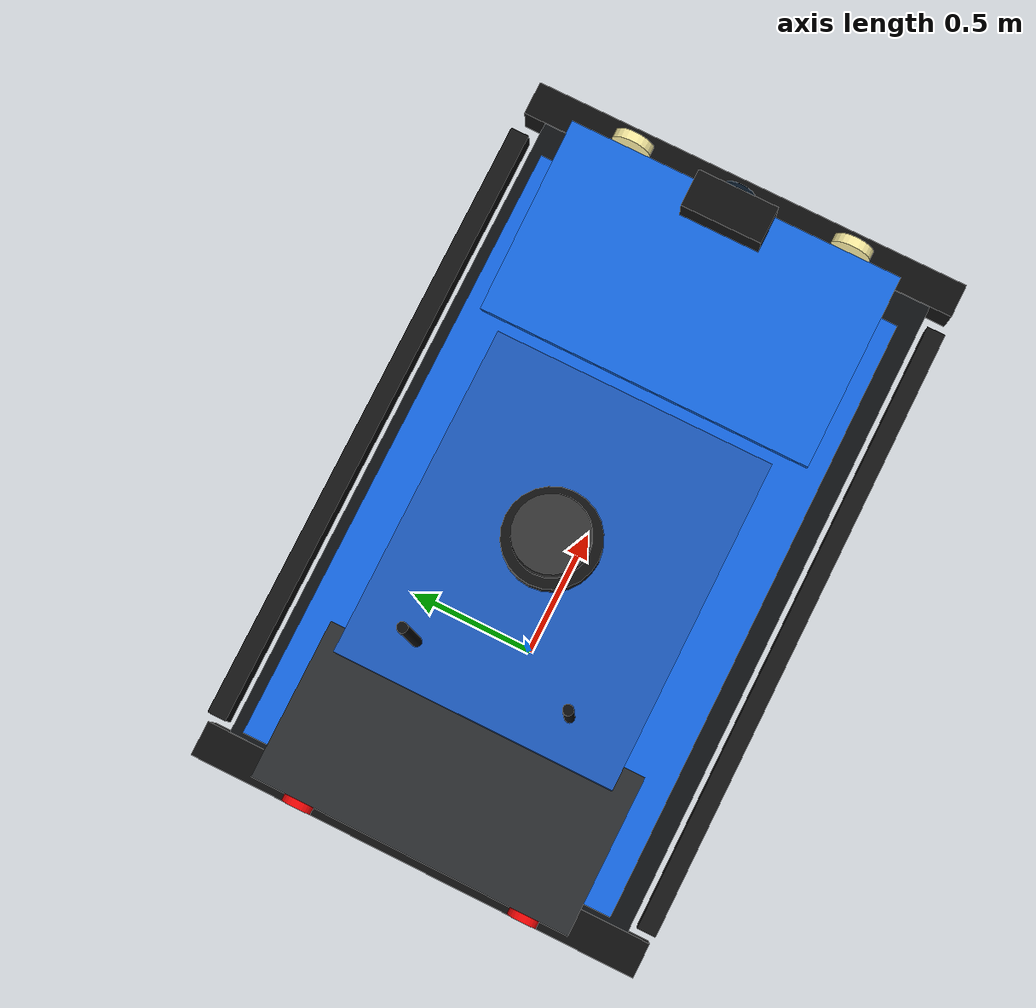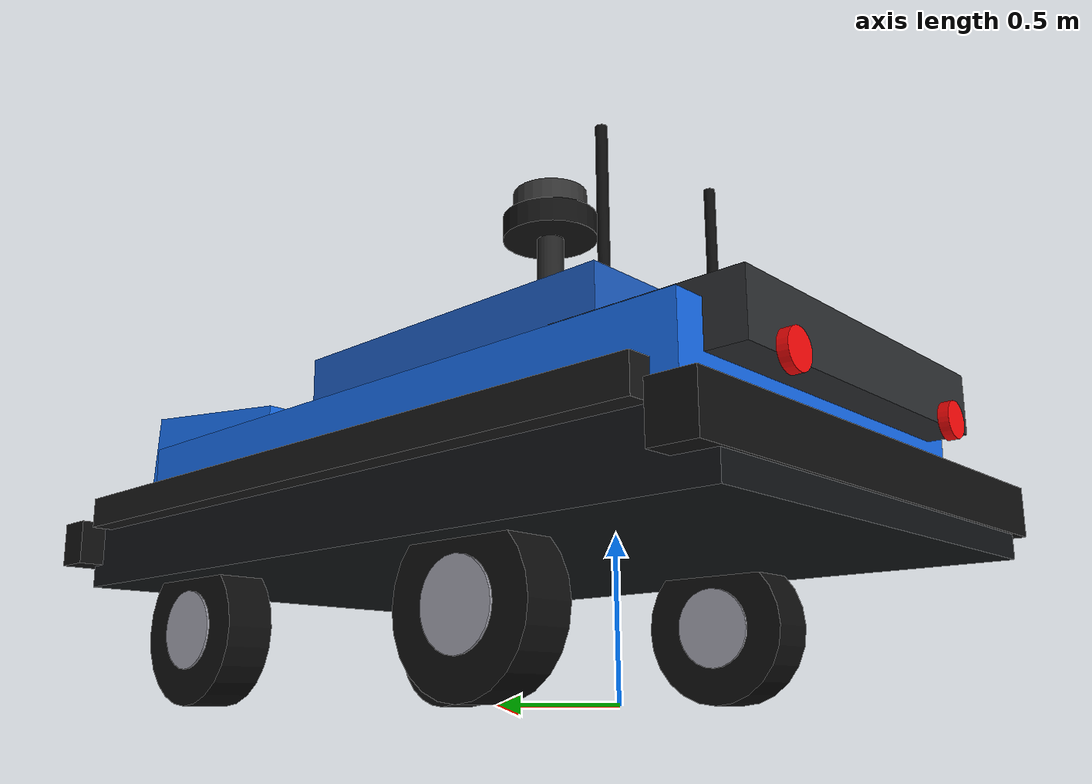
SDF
<?xml version="1.0"?>
<sdf version="1.10">

  <model name="ugv_6">

    <!-- REFERENCE CONVENTION                                  -->
    <!-- Model x=y=0 is the REAR AXLE CENTER, matching the     -->
    <!-- SHA*/LCBR State(x,y,yaw) reference. Front axle x=1.3. -->
    <!-- Planner footprint spans x=[-1,+2], y=[-1,+1].         -->

    <!-- CHASSIS -->
    <link name="base_link">
      <pose>0 0 0.35 0 0 0</pose>

      <inertial>
        <mass>20.0</mass>
        <inertia>
          <ixx>1.8</ixx>
          <iyy>3.0</iyy>
          <izz>3.5</izz>
        </inertia>
      </inertial>

      <collision name="collision">
        <!-- Planner footprint: rear axle reference, LB=1 m, LF=2 m. -->
        <pose>0.5 0 0 0 0 0</pose>
        <geometry>
          <box>
            <size>3.0 2.0 0.35</size>
          </box>
        </geometry>
      </collision>

      <!-- REALISTIC VISUAL BODY ONLY                         -->
      <!-- Physics, collision and Ackermann model unchanged. -->

      <!-- Structural lower chassis -->
      <visual name="lower_chassis">
        <pose>0.45 0 0.18 0 0 0</pose>
        <geometry>
          <box>
            <size>2.65 1.55 0.22</size>
          </box>
        </geometry>
        <material>
          <ambient>0.035 0.045 0.055 1</ambient>
          <diffuse>0.055 0.065 0.075 1</diffuse>
        </material>
      </visual>

      <!-- Main body -->
      <visual name="main_body">
        <pose>0.40 0 0.39 0 0 0</pose>
        <geometry>
          <box>
            <size>2.25 1.38 0.32</size>
          </box>
        </geometry>
        <material>
          <ambient>0.05 0.28 0.62 1</ambient>
          <diffuse>0.08 0.40 0.88 1</diffuse>
        </material>
      </visual>

      <!-- Raised central electronics enclosure -->
      <visual name="electronics_enclosure">
        <pose>0.25 0 0.65 0 0 0</pose>
        <geometry>
          <box>
            <size>1.20 1.02 0.25</size>
          </box>
        </geometry>
        <material>
          <ambient>0.07 0.24 0.50 1</ambient>
          <diffuse>0.10 0.34 0.72 1</diffuse>
        </material>
      </visual>

      <!-- Sloped-looking front hood -->
      <visual name="front_hood">
        <pose>1.30 0 0.52 0 -0.12 0</pose>
        <geometry>
          <box>
            <size>0.72 1.25 0.27</size>
          </box>
        </geometry>
        <material>
          <ambient>0.06 0.30 0.65 1</ambient>
          <diffuse>0.09 0.43 0.92 1</diffuse>
        </material>
      </visual>

      <!-- Rear equipment platform -->
      <visual name="rear_platform">
        <pose>-0.55 0 0.51 0 0 0</pose>
        <geometry>
          <box>
            <size>0.58 1.18 0.18</size>
          </box>
        </geometry>
        <material>
          <ambient>0.10 0.11 0.12 1</ambient>
          <diffuse>0.16 0.17 0.18 1</diffuse>
        </material>
      </visual>

      <!-- Front bumper -->
      <visual name="front_bumper">
        <pose>1.78 0 0.22 0 0 0</pose>
        <geometry>
          <box>
            <size>0.13 1.72 0.15</size>
          </box>
        </geometry>
        <material>
          <ambient>0.025 0.025 0.025 1</ambient>
          <diffuse>0.055 0.055 0.055 1</diffuse>
        </material>
      </visual>

      <!-- Rear bumper -->
      <visual name="rear_bumper">
        <pose>-0.82 0 0.22 0 0 0</pose>
        <geometry>
          <box>
            <size>0.13 1.72 0.15</size>
          </box>
        </geometry>
        <material>
          <ambient>0.025 0.025 0.025 1</ambient>
          <diffuse>0.055 0.055 0.055 1</diffuse>
        </material>
      </visual>

      <!-- Left protective side rail -->
      <visual name="left_side_rail">
        <pose>0.45 0.83 0.31 0 0 0</pose>
        <geometry>
          <box>
            <size>2.35 0.07 0.10</size>
          </box>
        </geometry>
        <material>
          <ambient>0.04 0.04 0.04 1</ambient>
          <diffuse>0.08 0.08 0.08 1</diffuse>
        </material>
      </visual>

      <!-- Right protective side rail -->
      <visual name="right_side_rail">
        <pose>0.45 -0.83 0.31 0 0 0</pose>
        <geometry>
          <box>
            <size>2.35 0.07 0.10</size>
          </box>
        </geometry>
        <material>
          <ambient>0.04 0.04 0.04 1</ambient>
          <diffuse>0.08 0.08 0.08 1</diffuse>
        </material>
      </visual>

      <!-- Sensor mast -->
      <visual name="sensor_mast">
        <pose>0.25 0 0.97 0 0 0</pose>
        <geometry>
          <cylinder>
            <radius>0.045</radius>
            <length>0.52</length>
          </cylinder>
        </geometry>
        <material>
          <ambient>0.08 0.08 0.08 1</ambient>
          <diffuse>0.14 0.14 0.14 1</diffuse>
        </material>
      </visual>

      <!-- LiDAR lower housing -->
      <visual name="lidar_base">
        <pose>0.25 0 1.22 0 0 0</pose>
        <geometry>
          <cylinder>
            <radius>0.16</radius>
            <length>0.08</length>
          </cylinder>
        </geometry>
        <material>
          <ambient>0.03 0.03 0.03 1</ambient>
          <diffuse>0.07 0.07 0.07 1</diffuse>
        </material>
      </visual>

      <!-- LiDAR scanning head -->
      <visual name="lidar_head">
        <pose>0.25 0 1.30 0 0 0</pose>
        <geometry>
          <cylinder>
            <radius>0.125</radius>
            <length>0.09</length>
          </cylinder>
        </geometry>
        <material>
          <ambient>0.12 0.12 0.12 1</ambient>
          <diffuse>0.20 0.20 0.20 1</diffuse>
        </material>
      </visual>

      <!-- Front camera housing -->
      <visual name="camera_body">
        <pose>1.58 0 0.70 0 0 0</pose>
        <geometry>
          <box>
            <size>0.14 0.30 0.18</size>
          </box>
        </geometry>
        <material>
          <ambient>0.025 0.025 0.025 1</ambient>
          <diffuse>0.06 0.06 0.06 1</diffuse>
        </material>
      </visual>

      <!-- Camera lens -->
      <visual name="camera_lens">
        <pose>1.66 0 0.70 0 1.5708 0</pose>
        <geometry>
          <cylinder>
            <radius>0.055</radius>
            <length>0.035</length>
          </cylinder>
        </geometry>
        <material>
          <ambient>0.01 0.03 0.05 1</ambient>
          <diffuse>0.02 0.08 0.14 1</diffuse>
        </material>
      </visual>

      <!-- Left headlight -->
      <visual name="left_headlight">
        <pose>1.73 0.43 0.48 0 1.5708 0</pose>
        <geometry>
          <cylinder>
            <radius>0.075</radius>
            <length>0.035</length>
          </cylinder>
        </geometry>
        <material>
          <ambient>1.0 0.90 0.55 1</ambient>
          <diffuse>1.0 0.95 0.65 1</diffuse>
          <emissive>0.65 0.55 0.20 1</emissive>
        </material>
      </visual>

      <!-- Right headlight -->
      <visual name="right_headlight">
        <pose>1.73 -0.43 0.48 0 1.5708 0</pose>
        <geometry>
          <cylinder>
            <radius>0.075</radius>
            <length>0.035</length>
          </cylinder>
        </geometry>
        <material>
          <ambient>1.0 0.90 0.55 1</ambient>
          <diffuse>1.0 0.95 0.65 1</diffuse>
          <emissive>0.65 0.55 0.20 1</emissive>
        </material>
      </visual>

      <!-- Left rear light -->
      <visual name="left_rear_light">
        <pose>-0.86 0.43 0.43 0 1.5708 0</pose>
        <geometry>
          <cylinder>
            <radius>0.055</radius>
            <length>0.03</length>
          </cylinder>
        </geometry>
        <material>
          <ambient>0.70 0.02 0.02 1</ambient>
          <diffuse>0.95 0.03 0.03 1</diffuse>
          <emissive>0.35 0.00 0.00 1</emissive>
        </material>
      </visual>

      <!-- Right rear light -->
      <visual name="right_rear_light">
        <pose>-0.86 -0.43 0.43 0 1.5708 0</pose>
        <geometry>
          <cylinder>
            <radius>0.055</radius>
            <length>0.03</length>
          </cylinder>
        </geometry>
        <material>
          <ambient>0.70 0.02 0.02 1</ambient>
          <diffuse>0.95 0.03 0.03 1</diffuse>
          <emissive>0.35 0.00 0.00 1</emissive>
        </material>
      </visual>

      <!-- Left antenna -->
      <visual name="left_antenna">
        <pose>-0.20 0.28 1.03 0 0 0</pose>
        <geometry>
          <cylinder>
            <radius>0.018</radius>
            <length>0.55</length>
          </cylinder>
        </geometry>
        <material>
          <ambient>0.03 0.03 0.03 1</ambient>
          <diffuse>0.05 0.05 0.05 1</diffuse>
        </material>
      </visual>

      <!-- Right antenna -->
      <visual name="right_antenna">
        <pose>-0.20 -0.28 1.03 0 0 0</pose>
        <geometry>
          <cylinder>
            <radius>0.018</radius>
            <length>0.55</length>
          </cylinder>
        </geometry>
        <material>
          <ambient>0.03 0.03 0.03 1</ambient>
          <diffuse>0.05 0.05 0.05 1</diffuse>
        </material>
      </visual>
    </link>

    <!-- FRONT STEERING LINKS -->

    <link name="front_left_steering_link">
      <pose>1.30 0.58 0.25 0 0 0</pose>
      <inertial>
        <mass>0.1</mass>
        <inertia>
          <ixx>0.001</ixx>
          <iyy>0.001</iyy>
          <izz>0.001</izz>
        </inertia>
      </inertial>
    </link>

    <link name="front_right_steering_link">
      <pose>1.30 -0.58 0.25 0 0 0</pose>
      <inertial>
        <mass>0.1</mass>
        <inertia>
          <ixx>0.001</ixx>
          <iyy>0.001</iyy>
          <izz>0.001</izz>
        </inertia>
      </inertial>
    </link>

    <!-- FRONT LEFT WHEEL -->
    <!-- Link frame stays aligned with vehicle. -->
    <!-- Cylinder geometry is rotated so axle is along Y. -->

    <link name="front_left_wheel">
      <pose>1.30 0.58 0.25 0 0 0</pose>

      <inertial>
        <mass>1.0</mass>
        <inertia>
          <ixx>0.03</ixx>
          <iyy>0.02</iyy>
          <izz>0.03</izz>
        </inertia>
      </inertial>

      <collision name="collision">
        <pose>0 0 0 1.5708 0 0</pose>

        <surface>
          <friction>
            <ode>
              <mu>1.0</mu>
              <mu2>1.0</mu2>
            </ode>
          </friction>
        </surface>

        <geometry>
          <cylinder>
            <radius>0.25</radius>
            <length>0.16</length>
          </cylinder>
        </geometry>
      </collision>

      <visual name="visual">
        <pose>0 0 0 1.5708 0 0</pose>

        <geometry>
          <cylinder>
            <radius>0.25</radius>
            <length>0.16</length>
          </cylinder>
        </geometry>

        <material>
          <ambient>0.05 0.05 0.05 1</ambient>
          <diffuse>0.05 0.05 0.05 1</diffuse>
        </material>
      </visual>

      <visual name="rim_visual">
        <pose>0 0 0 1.5708 0 0</pose>
        <geometry>
          <cylinder>
            <radius>0.13</radius>
            <length>0.175</length>
          </cylinder>
        </geometry>
        <material>
          <ambient>0.35 0.35 0.37 1</ambient>
          <diffuse>0.60 0.60 0.64 1</diffuse>
        </material>
      </visual>

</link>

    <!-- FRONT RIGHT WHEEL -->

    <link name="front_right_wheel">
      <pose>1.30 -0.58 0.25 0 0 0</pose>

      <inertial>
        <mass>1.0</mass>
        <inertia>
          <ixx>0.03</ixx>
          <iyy>0.02</iyy>
          <izz>0.03</izz>
        </inertia>
      </inertial>

      <collision name="collision">
        <pose>0 0 0 1.5708 0 0</pose>

        <surface>
          <friction>
            <ode>
              <mu>1.0</mu>
              <mu2>1.0</mu2>
            </ode>
          </friction>
        </surface>

        <geometry>
          <cylinder>
            <radius>0.25</radius>
            <length>0.16</length>
          </cylinder>
        </geometry>
      </collision>

      <visual name="visual">
        <pose>0 0 0 1.5708 0 0</pose>

        <geometry>
          <cylinder>
            <radius>0.25</radius>
            <length>0.16</length>
          </cylinder>
        </geometry>

        <material>
          <ambient>0.05 0.05 0.05 1</ambient>
          <diffuse>0.05 0.05 0.05 1</diffuse>
        </material>
      </visual>

      <visual name="rim_visual">
        <pose>0 0 0 1.5708 0 0</pose>
        <geometry>
          <cylinder>
            <radius>0.13</radius>
            <length>0.175</length>
          </cylinder>
        </geometry>
        <material>
          <ambient>0.35 0.35 0.37 1</ambient>
          <diffuse>0.60 0.60 0.64 1</diffuse>
        </material>
      </visual>

</link>

    <!-- REAR LEFT WHEEL -->

    <link name="rear_left_wheel">
      <pose>0.0 0.58 0.25 0 0 0</pose>

      <inertial>
        <mass>1.0</mass>
        <inertia>
          <ixx>0.03</ixx>
          <iyy>0.02</iyy>
          <izz>0.03</izz>
        </inertia>
      </inertial>

      <collision name="collision">
        <pose>0 0 0 1.5708 0 0</pose>

        <surface>
          <friction>
            <ode>
              <mu>1.0</mu>
              <mu2>1.0</mu2>
            </ode>
          </friction>
        </surface>

        <geometry>
          <cylinder>
            <radius>0.25</radius>
            <length>0.16</length>
          </cylinder>
        </geometry>
      </collision>

      <visual name="visual">
        <pose>0 0 0 1.5708 0 0</pose>

        <geometry>
          <cylinder>
            <radius>0.25</radius>
            <length>0.16</length>
          </cylinder>
        </geometry>

        <material>
          <ambient>0.05 0.05 0.05 1</ambient>
          <diffuse>0.05 0.05 0.05 1</diffuse>
        </material>
      </visual>

      <visual name="rim_visual">
        <pose>0 0 0 1.5708 0 0</pose>
        <geometry>
          <cylinder>
            <radius>0.13</radius>
            <length>0.175</length>
          </cylinder>
        </geometry>
        <material>
          <ambient>0.35 0.35 0.37 1</ambient>
          <diffuse>0.60 0.60 0.64 1</diffuse>
        </material>
      </visual>

</link>

    <!-- REAR RIGHT WHEEL -->

    <link name="rear_right_wheel">
      <pose>0.0 -0.58 0.25 0 0 0</pose>

      <inertial>
        <mass>1.0</mass>
        <inertia>
          <ixx>0.03</ixx>
          <iyy>0.02</iyy>
          <izz>0.03</izz>
        </inertia>
      </inertial>

      <collision name="collision">
        <pose>0 0 0 1.5708 0 0</pose>

        <surface>
          <friction>
            <ode>
              <mu>1.0</mu>
              <mu2>1.0</mu2>
            </ode>
          </friction>
        </surface>

        <geometry>
          <cylinder>
            <radius>0.25</radius>
            <length>0.16</length>
          </cylinder>
        </geometry>
      </collision>

      <visual name="visual">
        <pose>0 0 0 1.5708 0 0</pose>

        <geometry>
          <cylinder>
            <radius>0.25</radius>
            <length>0.16</length>
          </cylinder>
        </geometry>

        <material>
          <ambient>0.05 0.05 0.05 1</ambient>
          <diffuse>0.05 0.05 0.05 1</diffuse>
        </material>
      </visual>

      <visual name="rim_visual">
        <pose>0 0 0 1.5708 0 0</pose>
        <geometry>
          <cylinder>
            <radius>0.13</radius>
            <length>0.175</length>
          </cylinder>
        </geometry>
        <material>
          <ambient>0.35 0.35 0.37 1</ambient>
          <diffuse>0.60 0.60 0.64 1</diffuse>
        </material>
      </visual>

</link>

    <!-- STEERING JOINTS : rotation around Z -->

    <joint name="front_left_steering_joint" type="revolute">
      <parent>base_link</parent>
      <child>front_left_steering_link</child>

      <axis>
        <xyz>0 0 1</xyz>
        <limit>
          <lower>-0.60</lower>
          <upper>0.60</upper>
          <effort>100</effort>
          <velocity>2.0</velocity>
        </limit>
      </axis>
    </joint>

    <joint name="front_right_steering_joint" type="revolute">
      <parent>base_link</parent>
      <child>front_right_steering_link</child>

      <axis>
        <xyz>0 0 1</xyz>
        <limit>
          <lower>-0.60</lower>
          <upper>0.60</upper>
          <effort>100</effort>
          <velocity>2.0</velocity>
        </limit>
      </axis>
    </joint>

    <!-- FRONT WHEEL ROLLING JOINTS : rotation around Y -->

    <joint name="front_left_wheel_joint" type="revolute">
      <parent>front_left_steering_link</parent>
      <child>front_left_wheel</child>
      <axis>
        <xyz>0 1 0</xyz>
      </axis>
    </joint>

    <joint name="front_right_wheel_joint" type="revolute">
      <parent>front_right_steering_link</parent>
      <child>front_right_wheel</child>
      <axis>
        <xyz>0 1 0</xyz>
      </axis>
    </joint>

    <!-- REAR DRIVEN WHEELS : rotation around Y -->

    <joint name="rear_left_wheel_joint" type="revolute">
      <parent>base_link</parent>
      <child>rear_left_wheel</child>
      <axis>
        <xyz>0 1 0</xyz>
      </axis>
    </joint>

    <joint name="rear_right_wheel_joint" type="revolute">
      <parent>base_link</parent>
      <child>rear_right_wheel</child>
      <axis>
        <xyz>0 1 0</xyz>
      </axis>
    </joint>

    <!-- ACKERMANN STEERING SYSTEM -->

    <plugin
      filename="gz-sim-ackermann-steering-system"
      name="gz::sim::systems::AckermannSteering">

      <left_steering_joint>
        front_left_steering_joint
      </left_steering_joint>

      <right_steering_joint>
        front_right_steering_joint
      </right_steering_joint>

      <left_joint>
        rear_left_wheel_joint
      </left_joint>

      <right_joint>
        rear_right_wheel_joint
      </right_joint>

      <wheel_base>1.30</wheel_base>
      <wheel_separation>1.16</wheel_separation>
      <wheel_radius>0.25</wheel_radius>

      <min_velocity>-2.0</min_velocity>
      <max_velocity>2.0</max_velocity>

      <min_acceleration>-1.0</min_acceleration>
      <max_acceleration>1.0</max_acceleration>

      <steering_limit>0.448</steering_limit>
      <steer_p_gain>8.0</steer_p_gain>

      <topic>/ugv_6/cmd_vel</topic>

    </plugin>

  </model>

</sdf>
